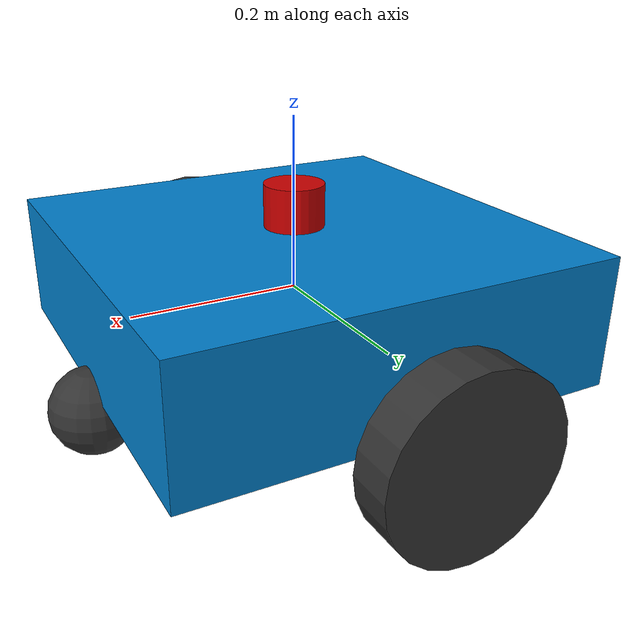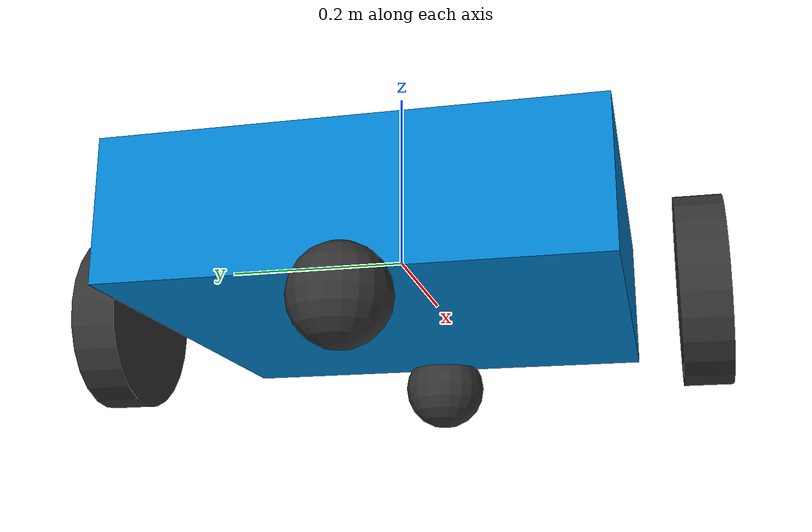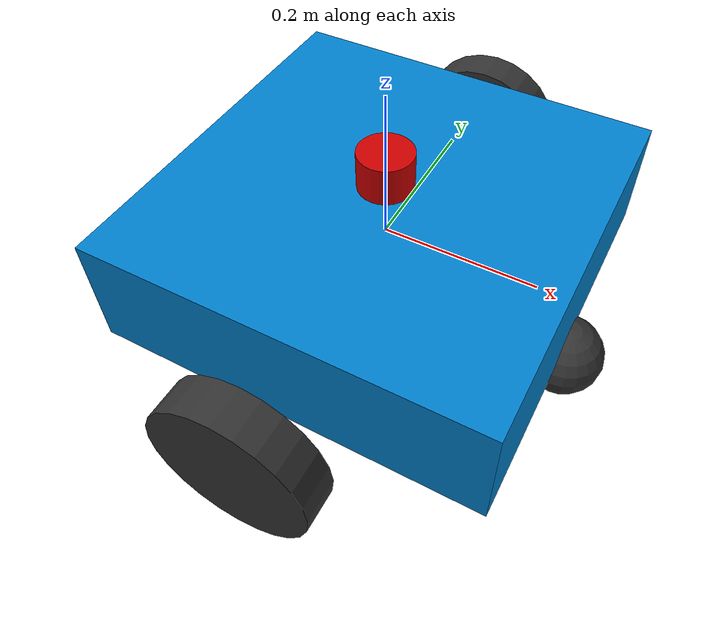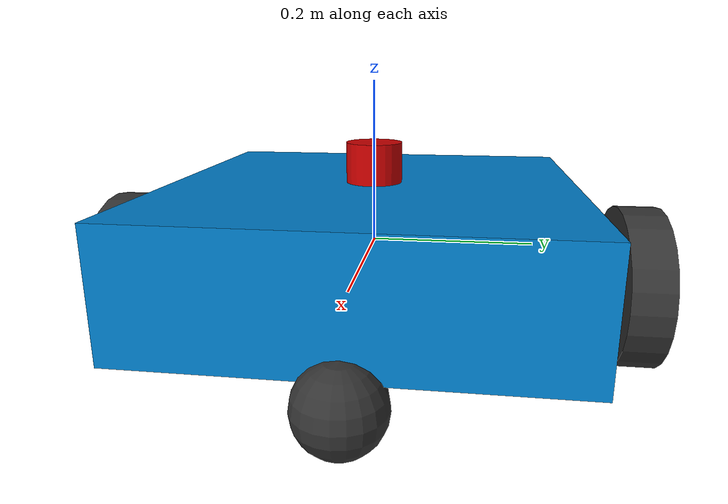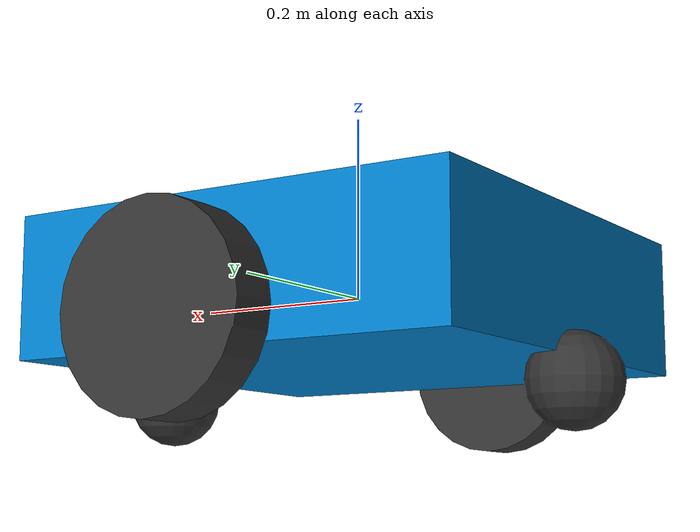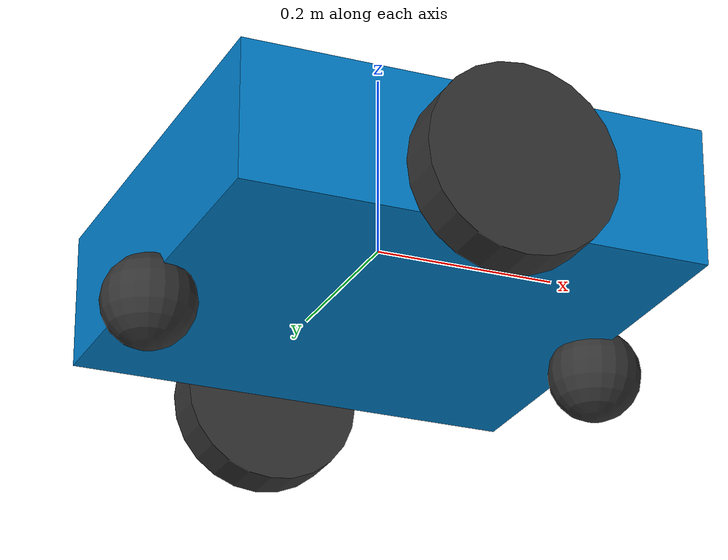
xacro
<?xml version="1.0"?>
<robot name="noname_robot" xmlns:xacro="http://ros.org/wiki/xacro">

  <!-- Base Link -->
  <link name="base_link">
    <visual>
      <geometry>
        <box size="0.5 0.5 0.15"/>
      </geometry>
      <material name="blue">
        <color rgba="0.0 0.5 0.8 1.0"/>
      </material>
    </visual>
    <collision>
      <geometry>
        <box size="0.5 0.5 0.15"/>
      </geometry>
    </collision>
    <inertial>
      <mass value="5.0"/>
      <inertia ixx="0.1" ixy="0" ixz="0" iyy="0.1" iyz="0" izz="0.1"/>
    </inertial>
  </link>

  <!-- Drive Wheels -->
  <xacro:macro name="drive_wheel" params="name y">
    <link name="${name}_link">
      <visual>
        <geometry>
          <cylinder radius="0.1" length="0.05"/>
        </geometry>
        <material name="dark_grey">
          <color rgba="0.2 0.2 0.2 1.0"/>
        </material>
      </visual>
      <collision>
        <geometry>
          <cylinder radius="0.1" length="0.05"/>
        </geometry>
      </collision>
      <inertial>
        <mass value="1.0"/>
        <inertia ixx="0.01" ixy="0" ixz="0" iyy="0.01" iyz="0" izz="0.01"/>
      </inertial>
    </link>
    <joint name="${name}_joint" type="continuous">
      <parent link="base_link"/>
      <child link="${name}_link"/>
      <origin xyz="0 ${y} -0.05" rpy="1.5708 0 0"/>
      <axis xyz="0 0 -1"/>
    </joint>
  </xacro:macro>

  <xacro:drive_wheel name="left_wheel" y="0.325"/>
  <xacro:drive_wheel name="right_wheel" y="-0.325"/>

  <!-- Caster Wheel -->
  <link name="caster_wheel">
    <visual>
      <geometry>
        <sphere radius="0.05"/>
      </geometry>
      <material name="dark_grey"/>
    </visual>
    <collision>
      <geometry>
        <sphere radius="0.05"/>
      </geometry>
    </collision>
    <inertial>
      <mass value="0.5"/>
      <inertia ixx="0.01" ixy="0" ixz="0" iyy="0.01" iyz="0" izz="0.01"/>
    </inertial>
  </link>
  <joint name="caster_wheel_joint" type="fixed">
    <parent link="base_link"/>
    <child link="caster_wheel"/>
    <origin xyz="0.25 0 -0.1" rpy="0 0 0"/>
  </joint>
  <!-- Optional rear caster -->
  <link name="rear_caster_wheel">
    <visual>
      <geometry>
        <sphere radius="0.05"/>
      </geometry>
      <material name="dark_grey"/>
    </visual>
    <collision>
      <geometry>
        <sphere radius="0.05"/>
      </geometry>
    </collision>
    <inertial>
      <mass value="0.5"/>
      <inertia ixx="0.01" ixy="0" ixz="0" iyy="0.01" iyz="0" izz="0.01"/>
    </inertial>
  </link>
  <joint name="rear_caster_wheel_joint" type="fixed">
    <parent link="base_link"/>
    <child link="rear_caster_wheel"/>
    <origin xyz="-0.25 0 -0.1" rpy="0 0 0"/>
  </joint>

  <!-- Gazebo Friction for casters -->
  <gazebo reference="caster_wheel">
    <mu1>0.001</mu1>
    <mu2>0.001</mu2>
  </gazebo>
  <gazebo reference="rear_caster_wheel">
    <mu1>0.001</mu1>
    <mu2>0.001</mu2>
  </gazebo>

  <!-- Laser Sensor Link -->
  <link name="laser">
    <visual>
      <geometry>
        <cylinder radius="0.035" length="0.05"/>
      </geometry>
      <material name="red">
        <color rgba="0.8 0.0 0.0 1.0"/>
      </material>
    </visual>
  </link>
  <joint name="laser_joint" type="fixed">
    <parent link="base_link"/>
    <child link="laser"/>
    <origin xyz="0 0 0.1" rpy="0 0 0"/>
  </joint>

  <!-- Gazebo Plugins -->
  <gazebo>
    <plugin name="diff_drive" filename="libgazebo_ros_diff_drive.so">
      <ros>
        <!-- The user asked to use /cmd_vel hasil dari velocity_smoother. Nav2's bringup launch remaps cmd_vel_smoothed to cmd_vel if smoother is enabled. -->
      </ros>
      <left_joint>left_wheel_joint</left_joint>
      <right_joint>right_wheel_joint</right_joint>
      <wheel_separation>0.65</wheel_separation>
      <wheel_diameter>0.2</wheel_diameter>

      <max_wheel_torque>200</max_wheel_torque>
      <max_wheel_acceleration>10.0</max_wheel_acceleration>

      <command_topic>cmd_vel</command_topic>
      <odometry_topic>odom</odometry_topic>
      <odometry_frame>odom</odometry_frame>
      <robot_base_frame>base_link</robot_base_frame>

      <publish_odom>true</publish_odom>
      <publish_odom_tf>true</publish_odom_tf>
      <publish_wheel_tf>true</publish_wheel_tf>
    </plugin>
  </gazebo>

  <gazebo reference="laser">
    <sensor type="ray" name="rplidar_sensor">
      <pose>0 0 0 0 0 0</pose>
      <visualize>true</visualize>
      <update_rate>10.0</update_rate>
      <ray>
        <scan>
          <horizontal>
            <samples>360</samples>
            <resolution>1</resolution>
            <min_angle>-3.14159</min_angle>
            <max_angle>3.14159</max_angle>
          </horizontal>
        </scan>
        <range>
          <min>0.15</min>
          <max>12.0</max>
          <resolution>0.01</resolution>
        </range>
      </ray>
      <plugin name="gazebo_ros_laser" filename="libgazebo_ros_ray_sensor.so">
        <ros>
          <remapping>~/out:=scan</remapping>
        </ros>
        <output_type>sensor_msgs/LaserScan</output_type>
        <frame_name>laser</frame_name>
      </plugin>
    </sensor>
  </gazebo>

</robot>
